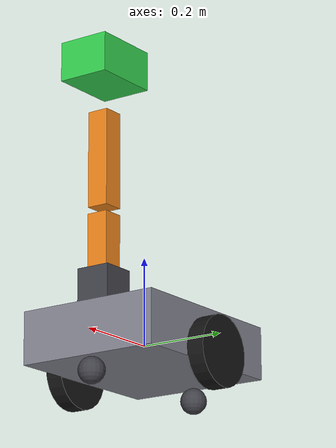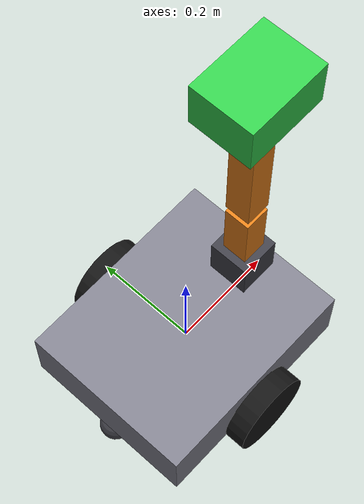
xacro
<?xml version="1.0"?>
<robot xmlns:xacro="http://www.ros.org/wiki/xacro" name="$(arg name)">
  <xacro:arg name="name" default="excavator"/>
  <xacro:arg name="ns" default="excavator"/>
  <xacro:include filename="$(find lunar_descriptions)/urdf/common.xacro"/>

  <!-- ===== 底盘 ===== -->
  <link name="base_link">
    <visual>
      <geometry><box size="0.42 0.34 0.12"/></geometry>
      <material name="lunar_grey"/>
    </visual>
    <collision>
      <geometry><box size="0.42 0.34 0.12"/></geometry>
    </collision>
    <xacro:box_inertial mass="8.0" lx="0.42" ly="0.34" lz="0.12"/>
  </link>

  <!-- ===== 驱动轮（差分）===== -->
  <xacro:drive_wheel prefix="left" parent="base_link" xyz="0 0.19 -0.04" rpy="1.5708 0 0" mass="0.5" radius="0.08" width="0.04"/>
  <xacro:drive_wheel prefix="right" parent="base_link" xyz="0 -0.19 -0.04" rpy="1.5708 0 0" mass="0.5" radius="0.08" width="0.04"/>

  <!-- ===== 支撑滑垫（低摩擦，转弯时滑动）===== -->
  <xacro:skid_pad prefix="front" parent="base_link" xyz="0.19 0 -0.09" mass="0.05" radius="0.03"/>
  <xacro:skid_pad prefix="rear" parent="base_link" xyz="-0.19 0 -0.09" mass="0.05" radius="0.03"/>

  <!-- ===== 机械臂（3 DOF 平面臂 + 铲斗）===== -->
  <link name="arm_base_link">
    <visual>
      <geometry><box size="0.08 0.08 0.08"/></geometry>
      <material name="lunar_dark"/>
    </visual>
    <collision>
      <geometry><box size="0.08 0.08 0.08"/></geometry>
    </collision>
    <xacro:box_inertial mass="0.3" lx="0.08" ly="0.08" lz="0.08"/>
  </link>
  <joint name="arm_base_joint" type="fixed">
    <parent link="base_link"/>
    <child link="arm_base_link"/>
    <origin xyz="0.15 0 0.10" rpy="0 0 0"/>
  </joint>

  <link name="upper_arm_link">
    <visual>
      <geometry><box size="0.05 0.05 0.25"/></geometry>
      <material name="lunar_orange"/>
    </visual>
    <collision>
      <geometry><box size="0.05 0.05 0.25"/></geometry>
    </collision>
    <xacro:box_inertial mass="0.4" lx="0.05" ly="0.05" lz="0.25"/>
  </link>
  <joint name="shoulder_pitch_joint" type="revolute">
    <parent link="arm_base_link"/>
    <child link="upper_arm_link"/>
    <origin xyz="0 0 0.04" rpy="0 0 0"/>
    <axis xyz="0 1 0"/>
    <limit lower="-2.5" upper="2.5" effort="20" velocity="3"/>
  </joint>

  <link name="forearm_link">
    <visual>
      <geometry><box size="0.05 0.05 0.22"/></geometry>
      <material name="lunar_orange"/>
    </visual>
    <collision>
      <geometry><box size="0.05 0.05 0.22"/></geometry>
    </collision>
    <xacro:box_inertial mass="0.35" lx="0.05" ly="0.05" lz="0.22"/>
  </link>
  <joint name="elbow_pitch_joint" type="revolute">
    <parent link="upper_arm_link"/>
    <child link="forearm_link"/>
    <origin xyz="0 0 0.25" rpy="0 0 0"/>
    <axis xyz="0 1 0"/>
    <limit lower="-2.5" upper="2.5" effort="20" velocity="3"/>
  </joint>

  <link name="bucket_link">
    <visual>
      <geometry><box size="0.16 0.12 0.09"/></geometry>
      <material name="lunar_green"/>
    </visual>
    <collision>
      <geometry><box size="0.16 0.12 0.09"/></geometry>
    </collision>
    <xacro:box_inertial mass="0.3" lx="0.16" ly="0.12" lz="0.09"/>
  </link>
  <joint name="wrist_pitch_joint" type="revolute">
    <parent link="forearm_link"/>
    <child link="bucket_link"/>
    <origin xyz="0 0 0.22" rpy="0 0 0"/>
    <axis xyz="0 1 0"/>
    <limit lower="-2.5" upper="2.5" effort="20" velocity="3"/>
  </joint>

  <!-- ===== gazebo_ros2_control 桥接 ===== -->
  <gazebo>
    <plugin filename="libgazebo_ros2_control.so" name="gazebo_ros2_control">
      <robot_param>robot_description</robot_param>
      <robot_param_node>$(arg name)_rsp</robot_param_node>
      <parameters>$(find lunar_control)/config/excavator_controllers.yaml</parameters>
      <ros>
        <namespace>$(arg ns)</namespace>
      </ros>
    </plugin>
  </gazebo>

  <ros2_control name="GazeboSystem" type="system">
    <hardware>
      <plugin>gazebo_ros2_control/GazeboSystem</plugin>
    </hardware>
    <joint name="left_wheel_joint">
      <command_interface name="velocity"/>
      <state_interface name="position"/>
      <state_interface name="velocity"/>
    </joint>
    <joint name="right_wheel_joint">
      <command_interface name="velocity"/>
      <state_interface name="position"/>
      <state_interface name="velocity"/>
    </joint>
    <joint name="shoulder_pitch_joint">
      <command_interface name="position"/>
      <state_interface name="position"/>
    </joint>
    <joint name="elbow_pitch_joint">
      <command_interface name="position"/>
      <state_interface name="position"/>
    </joint>
    <joint name="wrist_pitch_joint">
      <command_interface name="position"/>
      <state_interface name="position"/>
    </joint>
  </ros2_control>
</robot>

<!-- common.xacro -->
<robot xmlns:xacro="http://www.ros.org/wiki/xacro">

  <!-- ===== 材质 ===== -->
  <material name="lunar_grey"><color rgba="0.5 0.5 0.55 1"/></material>
  <material name="lunar_dark"><color rgba="0.25 0.25 0.28 1"/></material>
  <material name="lunar_black"><color rgba="0.08 0.08 0.08 1"/></material>
  <material name="lunar_blue"><color rgba="0.2 0.4 0.9 1"/></material>
  <material name="lunar_orange"><color rgba="0.9 0.5 0.1 1"/></material>
  <material name="lunar_green"><color rgba="0.2 0.8 0.3 1"/></material>
  <material name="lunar_yellow"><color rgba="0.95 0.85 0.2 1"/></material>

  <!-- ===== 盒体质心惯性（单位 SI）===== -->
  <xacro:macro name="box_inertial" params="mass lx ly lz">
    <inertial>
      <mass value="${mass}"/>
      <inertia ixx="${mass*(ly*ly+lz*lz)/12.0}" iyy="${mass*(lx*lx+lz*lz)/12.0}"
               izz="${mass*(lx*lx+ly*ly)/12.0}" ixy="0" ixz="0" iyz="0"/>
    </inertial>
  </xacro:macro>

  <!-- ===== 驱动轮（绕 y 轴滚动，差分驱动用）===== -->
  <xacro:macro name="drive_wheel" params="prefix parent xyz rpy mass radius width">
    <link name="${prefix}_wheel">
      <visual>
        <geometry><cylinder radius="${radius}" length="${width}"/></geometry>
        <material name="lunar_black"/>
      </visual>
      <collision>
        <geometry><cylinder radius="${radius}" length="${width}"/></geometry>
      </collision>
      <inertial>
        <mass value="${mass}"/>
        <inertia ixx="${mass*radius*radius/2.0}" iyy="${mass*radius*radius/2.0}"
                 izz="${mass*radius*radius/2.0}" ixy="0" ixz="0" iyz="0"/>
      </inertial>
    </link>
    <joint name="${prefix}_wheel_joint" type="continuous">
      <parent link="${parent}"/>
      <child link="${prefix}_wheel"/>
      <origin xyz="${xyz}" rpy="${rpy}"/>
      <axis xyz="0 0 -1"/>
      <limit effort="50" velocity="20"/>
      <dynamics damping="0.1"/>
    </joint>
    <gazebo reference="${prefix}_wheel">
      <mu1>1.5</mu1>
      <mu2>1.5</mu2>
    </gazebo>
  </xacro:macro>

  <!-- ===== 低摩擦支撑滑垫（前后各一，保持四点着地稳定）===== -->
  <xacro:macro name="skid_pad" params="prefix parent xyz mass radius">
    <link name="${prefix}_pad">
      <visual>
        <geometry><sphere radius="${radius}"/></geometry>
        <material name="lunar_dark"/>
      </visual>
      <collision>
        <geometry><sphere radius="${radius}"/></geometry>
      </collision>
      <inertial>
        <mass value="${mass}"/>
        <inertia ixx="${2.0*mass*radius*radius/5.0}" iyy="${2.0*mass*radius*radius/5.0}"
                 izz="${2.0*mass*radius*radius/5.0}" ixy="0" ixz="0" iyz="0"/>
      </inertial>
    </link>
    <joint name="${prefix}_pad_joint" type="fixed">
      <parent link="${parent}"/>
      <child link="${prefix}_pad"/>
      <origin xyz="${xyz}" rpy="0 0 0"/>
    </joint>
    <gazebo reference="${prefix}_pad">
      <mu1>0.05</mu1>
      <mu2>0.05</mu2>
    </gazebo>
  </xacro:macro>

  <!-- ===== 普通连杆（盒体）===== -->
  <xacro:macro name="box_link" params="name mass lx ly lz material">
    <link name="${name}">
      <visual>
        <geometry><box size="${lx} ${ly} ${lz}"/></geometry>
        <material name="${material}"/>
      </visual>
      <collision>
        <geometry><box size="${lx} ${ly} ${lz}"/></geometry>
      </collision>
      <xacro:box_inertial mass="${mass}" lx="${lx}" ly="${ly}" lz="${lz}"/>
    </link>
  </xacro:macro>

</robot>
